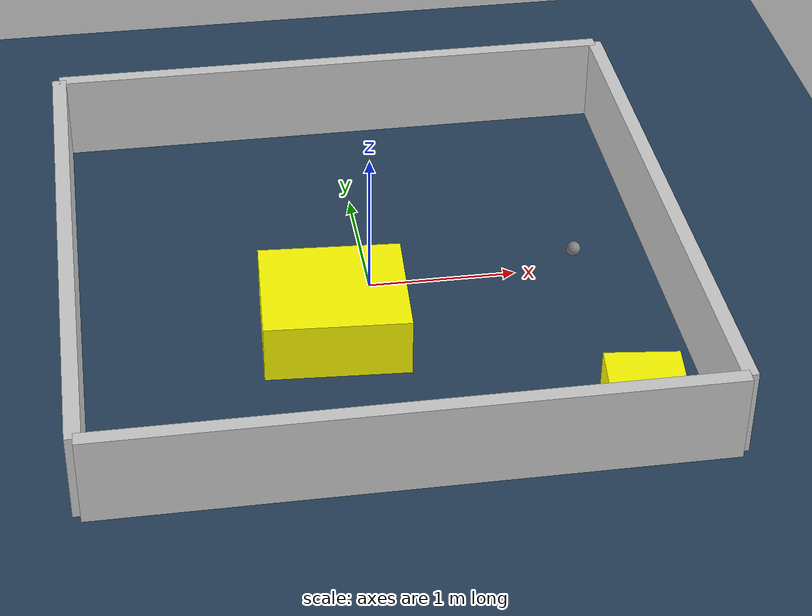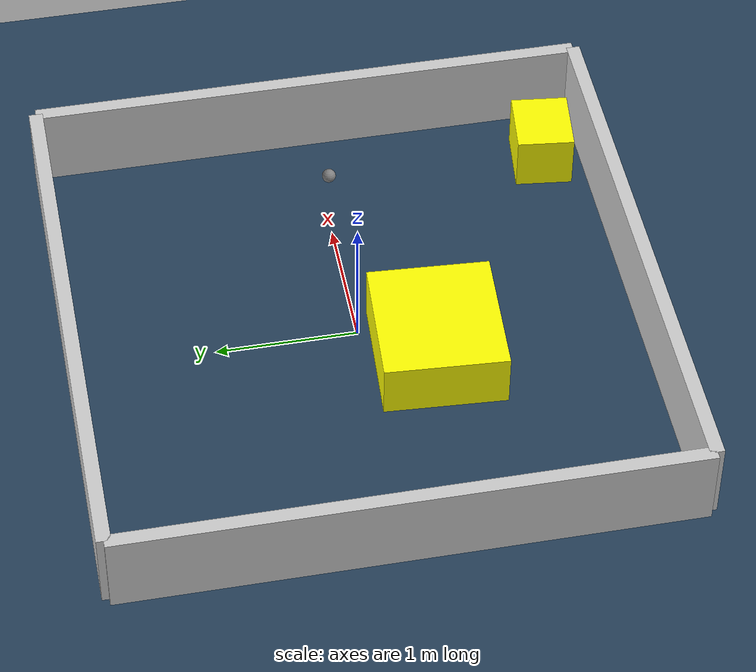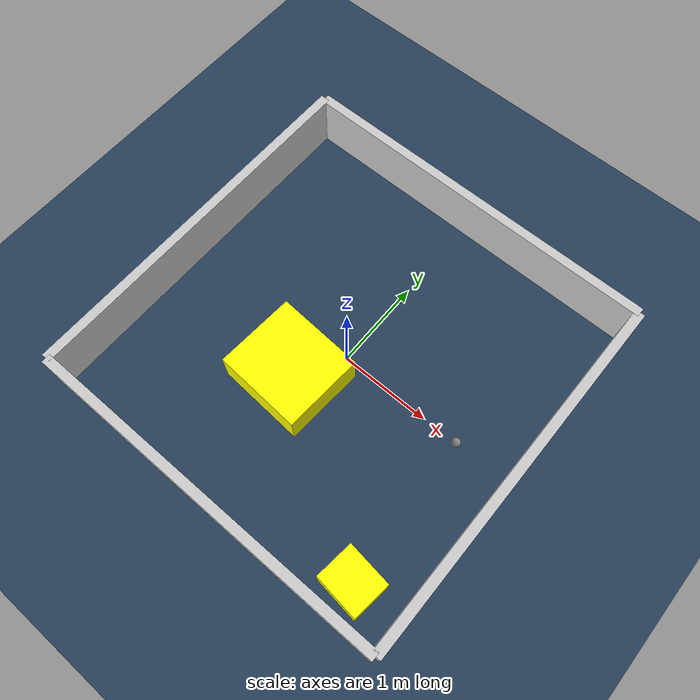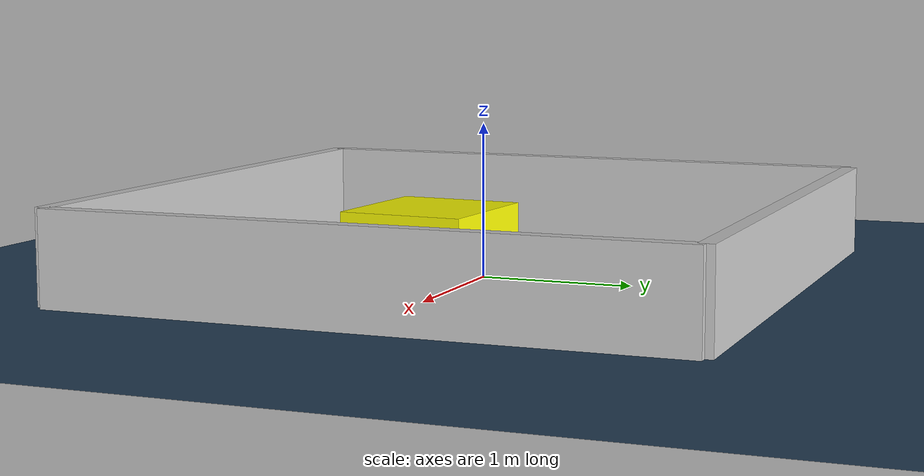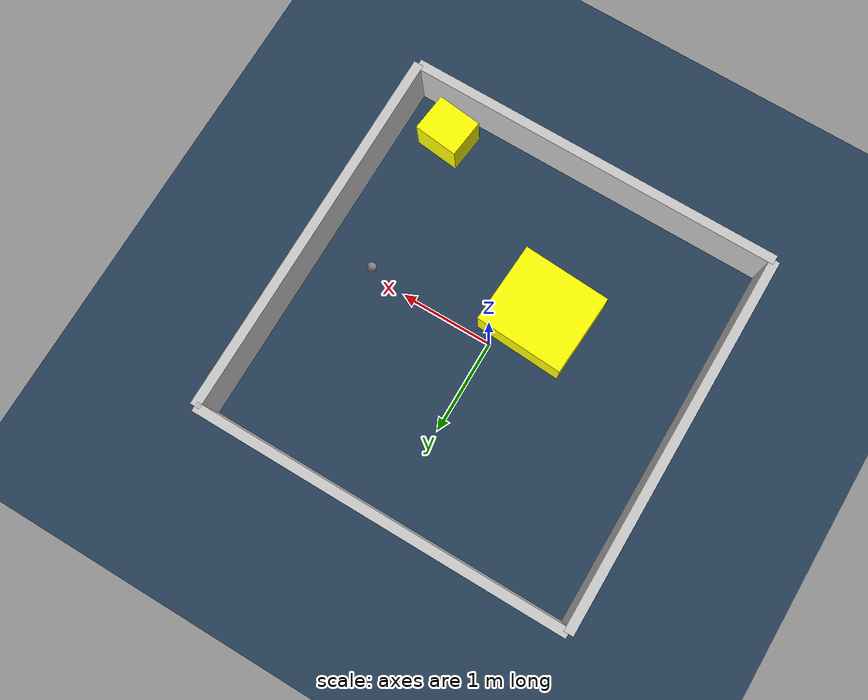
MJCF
<?xml version="1.0" ?>
<mujoco model="generated_environment">
  <option timestep="0.01" integrator="RK4" cone="elliptic"/>
  <default>
    <geom density="1"/>
  </default>
  <asset>
    <texture builtin="gradient" height="3072" rgb1="0.3 0.5 0.7" rgb2="0 0 0" type="skybox" width="512"/>
    <texture builtin="checker" height="300" mark="edge" markrgb="0.8 0.8 0.8" name="groundplane" rgb1="0.2 0.3 0.4" rgb2="0.1 0.2 0.3" type="2d" width="300"/>
    <material name="groundplane" reflectance="0.2" texrepeat="5 5" texture="groundplane" texuniform="true"/>
    <material name="robot" rgba="0.0 1.0 0.0 1"/>
  </asset>
  <worldbody>
    <light dir="0 0 -1" directional="true" pos="0 0 1.5"/>
    <geom condim="4" friction="1.0 0.005 0.001" material="groundplane" name="floor" size="0 0 0.05" type="plane"/>
    <body name="walls">
      <geom name="wall_1" condim="4" pos="-2.0 0.0 0.3" rgba="0.800000011920929 0.800000011920929 0.800000011920929 1.0" size="0.05 2.0 0.3" type="box"/>
      <geom name="wall_2" condim="4" pos="2.0 0.0 0.3" rgba="0.800000011920929 0.800000011920929 0.800000011920929 1.0" size="0.05 2.0 0.3" type="box"/>
      <geom name="wall_3" condim="4" pos="0.0 -2.0 0.3" rgba="0.800000011920929 0.800000011920929 0.800000011920929 1.0" size="2.0 0.05 0.3" type="box"/>
      <geom name="wall_4" condim="4" pos="0.0 2.0 0.3" rgba="0.800000011920929 0.800000011920929 0.800000011920929 1.0" size="2.0 0.05 0.3" type="box"/>
    </body>
    <body name="robot">
      <joint name="joint_x" type="slide" pos="0 0 0" axis="1 0 0"/>
      <joint name="joint_y" type="slide" pos="0 0 0" axis="0 1 0"/>
      <geom name="robot" type="sphere" pos="1.3916223785785973 -0.04824003740678995 0.2" size="0.05" mass="5." friction="1.0 0.005 0.0001" condim="4"/>
      <site name="sensor_ball"/>
    </body>
    <body name="obstacle_1_movable">
      <geom name="obstacle_1_movable" condim="4" pos="-0.30647064920337663 -0.5024596312902203 0.2" euler="0 0 266.5734528963474" friction="1.0 0.005 0.001" rgba="1 1 0 1" size="0.4336948970836838 0.47421607938335125 0.2" type="box" mass="0.1"/>
      <joint type="free"/>
    </body>
    <body name="obstacle_2_movable">
      <geom name="obstacle_2_movable" condim="4" pos="1.4663543810492543 -1.6548402011722767 0.2" euler="0 0 173.50173470632058" friction="1.0 0.005 0.001" rgba="1 1 0 1" size="0.2403566395242378 0.20547005367785404 0.2" type="box" mass="0.1"/>
      <joint type="free"/>
    </body>
  </worldbody>
  <actuator>
    <motor name="actuator_x" joint="joint_x" gear="1" ctrlrange="-1 1"/>
    <motor name="actuator_y" joint="joint_y" gear="1" ctrlrange="-1 1"/>
  </actuator>
</mujoco>
